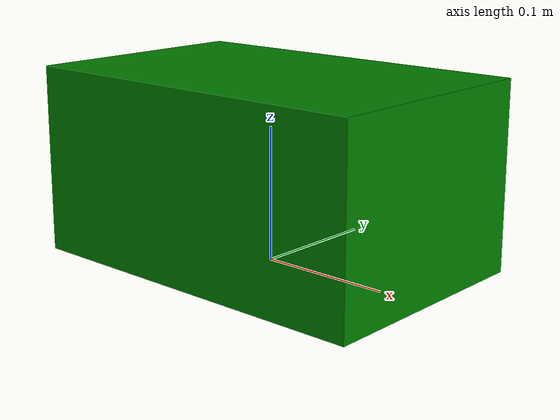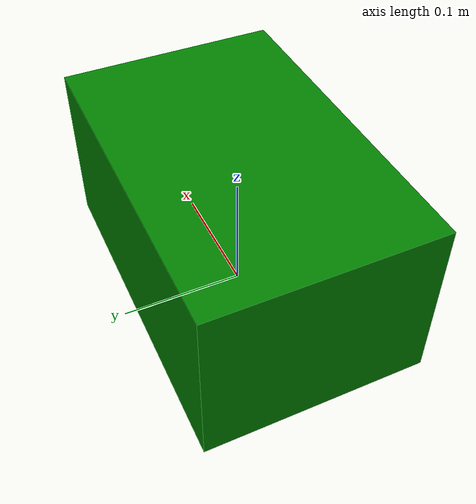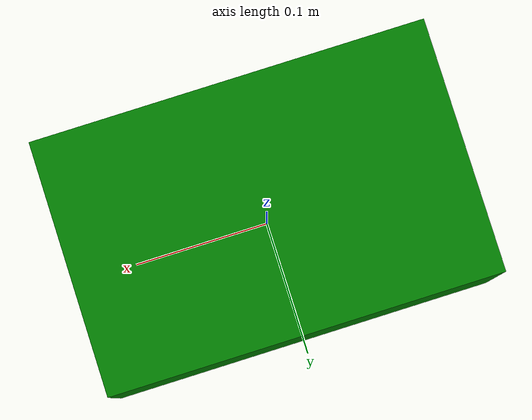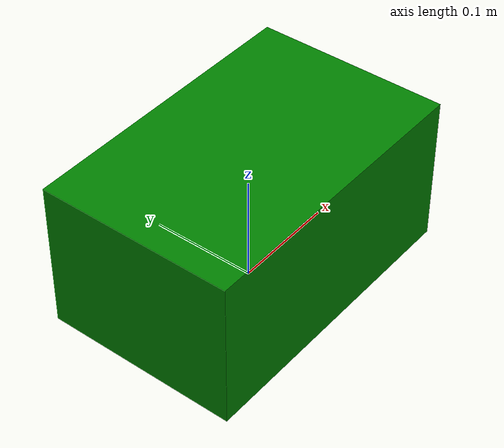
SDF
<!-- models/first_aid_kit/model.sdf -->
<sdf version="1.6">
  <model name="first_aid_kit"><static>true</static>
    <link name="box"><pose>0 0 0.07 0 0 0</pose>
      <collision name="col"><geometry><box><size>0.28 0.18 0.14</size></box></geometry></collision>
      <visual name="vis">
        <geometry><box><size>0.28 0.18 0.14</size></box></geometry>
        <material><ambient>0 0.5 0 1</ambient><diffuse>0 0.5 0 1</diffuse></material>
      </visual>
    </link>
  </model>
</sdf>
